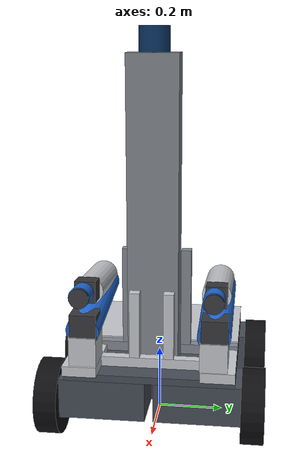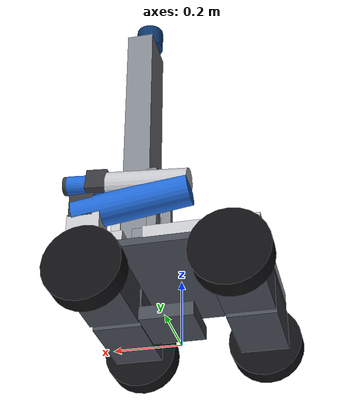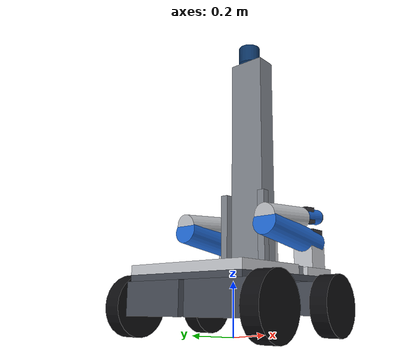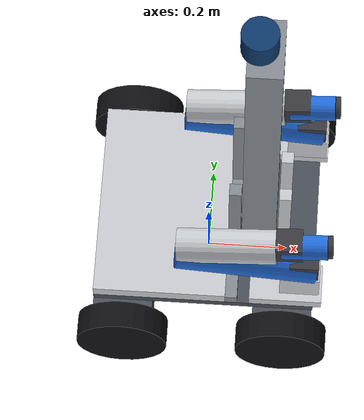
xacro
<?xml version="1.0"?>
<robot name="AG_robot" xmlns:xacro="http://www.ros.org/wiki/xacro">

  <xacro:include filename="$(find ag_robot_description)/urdf/piper_arm_simple.xacro"/>

  <xacro:arg name="lift_travel" default="0.40"/>
  <xacro:arg name="use_gazebo"  default="false"/>
  <xacro:arg name="arm1_prefix" default="arm1_"/>
  <xacro:arg name="arm2_prefix" default="arm2_"/>
  <xacro:arg name="lidar_pitch" default="0"/>
  <xacro:property name="lidar_pitch_deg" value="$(arg lidar_pitch)"/>
  <xacro:property name="lidar_pitch_rad" value="${radians(float(lidar_pitch_deg))}"/>
  <xacro:property name="velodyne_z"
                  value="${0.911 + 0.036*cos(lidar_pitch_rad) + 0.0445*sin(lidar_pitch_rad)}"/>
  <xacro:property name="arm1_prefix" value="$(arg arm1_prefix)"/>
  <xacro:property name="arm2_prefix" value="$(arg arm2_prefix)"/>

  <material name="grey"><color rgba="0.28 0.30 0.34 1.0"/></material>
  <material name="steel"><color rgba="0.52 0.54 0.57 1.0"/></material>
  <material name="black"><color rgba="0.06 0.06 0.07 1.0"/></material>
  <material name="blue"><color rgba="0.20 0.40 0.90 1.0"/></material>
  <material name="red"><color rgba="0.85 0.20 0.20 1.0"/></material>
  <material name="alu"><color rgba="0.78 0.79 0.81 1.0"/></material>
  <material name="dark"><color rgba="0.22 0.22 0.24 1.0"/></material>
  <material name="velodyne_blue"><color rgba="0.05 0.22 0.42 1.0"/></material>
  <material name="accent"><color rgba="0.13 0.42 0.85 1.0"/></material>

  <!-- ───────── 图元宏: visual 与 collision 共用一份几何 ───────── -->
  <xacro:macro name="ag_box" params="size xyz mat rgba">
    <visual>
      <origin xyz="${xyz}" rpy="0 0 0"/>
      <geometry><box size="${size}"/></geometry>
      <material name="${mat}"><color rgba="${rgba}"/></material>
    </visual>
    <collision>
      <origin xyz="${xyz}" rpy="0 0 0"/>
      <geometry><box size="${size}"/></geometry>
    </collision>
  </xacro:macro>

  <!-- 图元宏: visual 与 collision 共用一份几何。
       参数名用 lng 而不是 len —— xacro 内部要用 Python 的 len(), 用 len 当参数名会
       每次实例化都打印 "warning: redefining global symbol: len" (不影响结果, 但很吵)。 -->
  <xacro:macro name="ag_cyl" params="rad lng xyz rpy mat rgba">
    <visual>
      <origin xyz="${xyz}" rpy="${rpy}"/>
      <geometry><cylinder radius="${rad}" length="${lng}"/></geometry>
      <material name="${mat}"><color rgba="${rgba}"/></material>
    </visual>
    <collision>
      <origin xyz="${xyz}" rpy="${rpy}"/>
      <geometry><cylinder radius="${rad}" length="${lng}"/></geometry>
    </collision>
  </xacro:macro>

  <!-- ═════════ base_footprint: 地面投影, Nav2 用 ═════════
       轮子最低点在 base_link 里是 z=-218.49, 所以 base_link 抬高 218.49 mm —— 与原来同。 -->
  <link name="base_footprint"/>

  <joint name="base_joint" type="fixed">
    <parent link="base_footprint"/>
    <child link="base_link"/>
    <origin xyz="0 0 0.2184858" rpy="0 0 1.5707963"/>
  </joint>

  <link name="base_link">
    <!-- ① 车架: 顶板 460×550×2 (Z 0..2) + 4 根 2020 型材 (|X| 210..250, Z -20..0)
           + 4 根 2040 横梁 (Z -20..0) 的并集 -->
    <xacro:ag_box size="0.500 0.550 0.022" xyz="0 0 -0.009"
                  mat="grey" rgba="0.28 0.30 0.34 1.0"/>
    <!-- ② 四套独立悬挂/轮毂总成: 原 4 个连通件, 各 261.5 × 148.0 × 120.0 mm
           前轴 Y -272.983..-125.0 (中心 -198.99), 后轴 Y 127.017..275.0 (中心 201.01)
           注意外沿 |X|=273.5 < 轮子内侧面 253.5+... : 轮毂正好伸进轮子里, 与原来一致 -->
    <xacro:ag_box size="0.2615 0.1479832 0.120" xyz="-0.14275 -0.1989916 -0.0799916"
                  mat="grey" rgba="0.28 0.30 0.34 1.0"/>
    <xacro:ag_box size="0.2615 0.1479832 0.120" xyz=" 0.14275 -0.1989916 -0.0799916"
                  mat="grey" rgba="0.28 0.30 0.34 1.0"/>
    <xacro:ag_box size="0.2615 0.1479832 0.120" xyz="-0.14275  0.2010084 -0.0799916"
                  mat="grey" rgba="0.28 0.30 0.34 1.0"/>
    <xacro:ag_box size="0.2615 0.1479832 0.120" xyz=" 0.14275  0.2010084 -0.0799916"
                  mat="grey" rgba="0.28 0.30 0.34 1.0"/>
    <!-- ③ 底盘下方中央的电池/电控总成: 原连通件 177.0 × 164.29 × 42.4 mm
           (原文件里那 205,888 面的"细节王"件就在这一块里, 简化后整块略过) -->
    <xacro:ag_box size="0.177 0.1642868 0.0424" xyz="-0.0595 -0.0408566 -0.1187916"
                  mat="grey" rgba="0.28 0.30 0.34 1.0"/>
    <!-- ④ 固定在底盘上的平置导轨 (原 rail.stl, 500 × 330 × 36.5 mm, 铝色)
           原文件里它是单独的 visual 就是为了保持亮铝色, 这里同样是独立的一块 -->
    <xacro:ag_box size="0.500 0.330 0.0365" xyz="0 0.110 0.01875"
                  mat="alu" rgba="0.78 0.79 0.81 1.0"/>
    <inertial>
      <origin xyz="0.000000 0.000000 -0.052246" rpy="0 0 0"/>
      <mass value="19.352"/>
      <inertia ixx="0.539215" ixy="0" ixz="0" iyy="0.533908" iyz="0" izz="0.970366"/>
    </inertial>
  </link>

  <!-- ═════════ imu_link: IMU 坐标系 (与原来完全一致: 只有坐标, 无几何) ═════════
       IMU 集成在主控(Orin)上、没有独立安装件。X=0, Y=0, Z = base_link 下方 0.0754 m。 -->
  <link name="imu_link">
    <inertial>
      <origin xyz="0 0 0" rpy="0 0 0"/>
      <mass value="0.02"/>
      <inertia ixx="1e-06" ixy="0" ixz="0" iyy="1e-06" iyz="0" izz="1e-06"/>
    </inertial>
  </link>

  <joint name="imu_joint" type="fixed">
    <parent link="base_link"/>
    <child  link="imu_link"/>
    <origin xyz="0 0 -0.0754" rpy="0 0 0"/>
  </joint>

  <xacro:macro name="wheel_link" params="i">
    <link name="wheel_${i}">
      <xacro:ag_cyl rad="0.1134942" lng="0.068" xyz="0 0 0" rpy="1.5707963 0 0"
                    mat="black" rgba="0.06 0.06 0.07 1.0"/>
      <inertial>
        <origin xyz="0 0.0072004 0" rpy="0 0 0"/>
        <mass value="5.471"/>
        <inertia ixx="0.026585" ixy="0" ixz="0" iyy="0.046979" iyz="0" izz="0.026585"/>
      </inertial>
    </link>
  </xacro:macro>
  <xacro:wheel_link i="1"/><xacro:wheel_link i="2"/>
  <xacro:wheel_link i="3"/><xacro:wheel_link i="4"/>

  <joint name="wheel_1_joint" type="continuous">
    <parent link="base_link"/>
    <child link="wheel_1"/>
    <origin xyz="-0.3019 0.2010084 -0.1049916" rpy="0 0.2807556 -1.5707963"/>
    <axis xyz="0 -1 0"/>
    <limit effort="50" velocity="20"/>
    <dynamics damping="0.01" friction="0.1"/>
  </joint>

  <joint name="wheel_2_joint" type="continuous">
    <parent link="base_link"/>
    <child link="wheel_2"/>
    <origin xyz="0.3019 0.2010084 -0.1049916" rpy="0 0.2807556 1.5707963"/>
    <axis xyz="0 1 0"/>
    <limit effort="50" velocity="20"/>
    <dynamics damping="0.01" friction="0.1"/>
  </joint>

  <joint name="wheel_3_joint" type="continuous">
    <parent link="base_link"/>
    <child link="wheel_3"/>
    <origin xyz="-0.3019 -0.1989916 -0.1049916" rpy="0 0.2807556 -1.5707963"/>
    <axis xyz="0 -1 0"/>
    <limit effort="50" velocity="20"/>
    <dynamics damping="0.01" friction="0.1"/>
  </joint>

  <joint name="wheel_4_joint" type="continuous">
    <parent link="base_link"/>
    <child link="wheel_4"/>
    <origin xyz="0.3019 -0.1989916 -0.1049916" rpy="0 0.2807556 1.5707963"/>
    <axis xyz="0 1 0"/>
    <limit effort="50" velocity="20"/>
    <dynamics damping="0.01" friction="0.1"/>
  </joint>

  <link name="base_frame_link">
    <!-- ① 立柱本体 + 推杆(合成一块) -->
    <xacro:ag_box size="0.150 0.0856 0.909" xyz="0 -0.1296 0.4565"
                  mat="steel" rgba="0.52 0.54 0.57 1.0"/>
    <!-- ② 后侧底部横导轨 (500 mm) -->
    <xacro:ag_box size="0.500 0.030 0.030" xyz="0 -0.070 0.017"
                  mat="steel" rgba="0.52 0.54 0.57 1.0"/>
    <!-- ③ 后侧两根竖直 3030 型材 (300 mm) -->
    <xacro:ag_box size="0.030 0.030 0.300" xyz="-0.090 -0.070 0.182"
                  mat="steel" rgba="0.52 0.54 0.57 1.0"/>
    <xacro:ag_box size="0.030 0.030 0.300" xyz=" 0.090 -0.070 0.182"
                  mat="steel" rgba="0.52 0.54 0.57 1.0"/>
    <inertial>
      <origin xyz="0.000000 -0.114898 0.455004" rpy="0 0 0"/>
      <mass value="25.293"/>
      <inertia ixx="1.783345" ixy="0" ixz="0" iyy="2.280038" iyz="0" izz="0.557192"/>
    </inertial>
  </link>

  <joint name="base_frame_joint" type="fixed">
    <parent link="base_link"/>
    <child link="base_frame_link"/>
    <origin xyz="0 0 0" rpy="0 0 0"/>
  </joint>

  <joint name="lift_joint" type="prismatic">
    <parent link="base_frame_link"/>
    <child link="lift_platform_link"/>
    <origin xyz="0 0 0" rpy="0 0 0"/>
    <axis xyz="0 0 1"/>
    <limit lower="0.0" upper="$(arg lift_travel)" effort="2000" velocity="0.15"/>
    <dynamics damping="50.0" friction="20.0"/>
  </joint>

  <link name="lift_platform_link">
    <!-- ① 机械臂托板 (左 X -250..-150 / 右 X 150..250, 顶面 Z=32) -->
    <xacro:ag_box size="0.100 0.180 0.030" xyz="-0.200 -0.2050963 0.017"
                  mat="alu" rgba="0.78 0.79 0.81 1.0"/>
    <xacro:ag_box size="0.100 0.180 0.030" xyz=" 0.200 -0.2032778 0.017"
                  mat="alu" rgba="0.78 0.79 0.81 1.0"/>
    <!-- ② 前方横向导轨 (300 mm, Z 2..32) -->
    <xacro:ag_box size="0.300 0.030 0.030" xyz="0 -0.1919963 0.017"
                  mat="alu" rgba="0.78 0.79 0.81 1.0"/>
    <!-- ③ 前方两根竖直 3030 型材 (200 mm, Z 32..232) -->
    <xacro:ag_box size="0.030 0.030 0.200" xyz="-0.0505 -0.1919963 0.132"
                  mat="alu" rgba="0.78 0.79 0.81 1.0"/>
    <xacro:ag_box size="0.030 0.030 0.200" xyz=" 0.0505 -0.1919963 0.132"
                  mat="alu" rgba="0.78 0.79 0.81 1.0"/>
    <inertial>
      <origin xyz="0.000000 -0.202447 0.117000" rpy="0 0 0"/>
      <mass value="3.602"/>
      <inertia ixx="0.026183" ixy="0" ixz="0" iyy="0.090914" iyz="0" izz="0.085342"/>
    </inertial>
  </link>

  <link name="velodyne_link">
    <visual>
      <geometry><cylinder radius="0.0445" length="0.072"/></geometry>
      <material name="velodyne_blue"/>
    </visual>
    <collision>
      <geometry><cylinder radius="0.0445" length="0.072"/></geometry>
    </collision>
    <inertial>
      <origin xyz="0 0 0" rpy="0 0 0"/>
      <mass value="0.59"/>
      <inertia ixx="0.000547" ixy="0" ixz="0"
               iyy="0.000547" iyz="0" izz="0.000584"/>
    </inertial>
  </link>

  <joint name="velodyne_joint" type="fixed">
    <parent link="base_frame_link"/>
    <child link="velodyne_link"/>
    <!-- 位姿由 lidar_pitch 参数驱动, 与 AG_robot.urdf.xacro 里的公式逐字相同 -->
    <origin xyz="0 -0.114898 ${velodyne_z}" rpy="${lidar_pitch_rad} 0 0"/>
  </joint>

  <xacro:piper_arm_simple prefix="${arm1_prefix}" parent="lift_platform_link">
    <origin xyz="0.187732 -0.249047 0.032000" rpy="0 0 -1.5707963"/>
  </xacro:piper_arm_simple>
  <xacro:piper_arm_simple prefix="${arm2_prefix}" parent="lift_platform_link">
    <origin xyz="-0.190000 -0.247667 0.032000" rpy="0 0 -1.5707963"/>
  </xacro:piper_arm_simple>

  <!-- 轮子摩擦系数 (与 AG_robot.urdf.xacro 相同; gazebo.xacro 里另有一份同样的定义,
       两份都会被 sdformat 合并, 值一致所以无冲突 —— 保持与原文件相同的写法) -->
  <xacro:macro name="wheel_gz" params="i">
    <gazebo reference="wheel_${i}">
      <mu1>1.2</mu1><mu2>1.2</mu2>
    </gazebo>
  </xacro:macro>
  <xacro:wheel_gz i="1"/><xacro:wheel_gz i="2"/>
  <xacro:wheel_gz i="3"/><xacro:wheel_gz i="4"/>

  <xacro:if value="$(arg use_gazebo)">
    <xacro:include filename="$(find ag_robot_description)/urdf/gazebo.xacro"/>
  </xacro:if>

</robot>

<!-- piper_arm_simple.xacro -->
<robot xmlns:xacro="http://www.ros.org/wiki/xacro">

  <xacro:macro name="piper_arm_simple" params="prefix parent *origin">

    <!-- ───────── base_link (臂座) ─────────
         官方网格包围盒: 98.5 × 80.0 × 86.0 mm, 中心 (-9.25, 0, 43) mm
         原来是一块带圆角的底座 + 中间圆柱凸台; 简化成长方体, 外形尺寸不变 -->
    <link name="${prefix}base_link">
      <inertial>
        <origin xyz="-0.00473641164191482 2.56829134630247E-05 0.041451518036016" rpy="0 0 0"/>
        <mass value="1.02"/>
        <inertia ixx="0.00267433" ixy="-0.00000073" ixz="-0.00017389" iyy="0.00282612" iyz="0.0000004" izz="0.00089624"/>
      </inertial>
      <xacro:ag_box size="0.0985 0.08 0.086" xyz="-0.00925 0 0.043"
                   mat="alu" rgba="0.78 0.79 0.81 1.0"/>
    </link>
    <!-- ───────── link1 (J1 转台) ─────────
         官方网格包围盒: 71.86 × 77.5 × 73.0 mm, 中心 (0.055, 2, -6.5) mm -->
    <link name="${prefix}link1">
      <inertial>
        <origin xyz="0.00032 -0.00041 -0.00348" rpy="0 0 0"/>
        <mass value="0.71"/>
        <inertia ixx="0.00050027" ixy="0.00000078" ixz="0.00000626" iyy="0.00040879" iyz="0.00000462" izz="0.00045802"/>
      </inertial>
      <xacro:ag_box size="0.071863 0.0775 0.073" xyz="0.0000545 0.002 -0.0065"
                   mat="dark" rgba="0.22 0.22 0.24 1.0"/>
    </link>
    <!-- ───────── link2 (大臂, 长杆沿 +X) ─────────
         官方网格包围盒: 347.97 (X) × 96.53 (Y) × 97.0 (Z) mm, 中心 (142.522, -16.548, 0) mm
         原来是一根圆角方管(截面 96.5×97) + 末端关节壳; 简化成沿 X 的圆柱, 半径取截面的一半 -->
    <link name="${prefix}link2">
      <inertial>
        <origin xyz="0.21852 -0.00861 0.00126" rpy="0 0 0"/>
        <mass value="1.16"/>
        <inertia ixx="0.00111915" ixy="0.00182916" ixz="0.00019233" iyy="0.06763251" iyz="0.00000767" izz="0.067559"/>
      </inertial>
      <xacro:ag_cyl rad="0.0485" lng="0.347971" xyz="0.1425225 -0.016548 0" rpy="0 1.5707963 0"
                    mat="accent" rgba="0.13 0.42 0.85 1.0"/>
    </link>
    <!-- ───────── link3 (小臂, 长杆沿 -Y) ─────────
         官方网格包围盒: 86.05 (X) × 244.72 (Y) × 80.75 (Z) mm, 中心 (-13.109, -92.391, 0.375) mm -->
    <link name="${prefix}link3">
      <inertial>
        <origin xyz="-0.01999 -0.14808 -0.00053" rpy="0 0 0"/>
        <mass value="0.5"/>
        <inertia ixx="0.01347608" ixy="0.00161034" ixz="0.00000066" iyy="0.00046377" iyz="0.00000162" izz="0.01363321"/>
      </inertial>
      <xacro:ag_cyl rad="0.0430255" lng="0.244722" xyz="-0.0131085 -0.092391 0.000375" rpy="-1.5707963 0 0"
                    mat="alu" rgba="0.78 0.79 0.81 1.0"/>
    </link>
    <!-- ───────── link4 (腕部转座) ─────────
         官方网格包围盒: 62.71 × 61.08 × 64.45 mm, 中心 (-1.513, 2.043, -3.776) mm -->
    <link name="${prefix}link4">
      <inertial>
        <origin xyz="0.00013 -0.00076 -0.00394" rpy="0 0 0"/>
        <mass value="0.38"/>
        <inertia ixx="0.00017844" ixy="0.00000062" ixz="0.00000067" iyy="0.00018914" iyz="0.00000408" izz="0.00014613"/>
      </inertial>
      <xacro:ag_box size="0.062711 0.06108 0.064448" xyz="-0.0015125 0.002043 -0.003776"
                   mat="dark" rgba="0.22 0.22 0.24 1.0"/>
    </link>
    <!-- ───────── link5 (腕部, 短杆沿 -Y) ─────────
         官方网格包围盒: 59.96 (X) × 113.48 (Y) × 60.92 (Z) mm, 中心 (0, -33.261, -1.958) mm -->
    <link name="${prefix}link5">
      <inertial>
        <origin xyz="0.00018 -0.06104 -0.00227" rpy="0 0 0"/>
        <mass value="0.383"/>
        <inertia ixx="0.00172318" ixy="0.00000259" ixz="0.00000010" iyy="0.00017936" iyz="0.00000990" izz="0.00171172"/>
      </inertial>
      <xacro:ag_cyl rad="0.03049" lng="0.113479" xyz="0 -0.0332605 -0.001958" rpy="-1.5707963 0 0"
                    mat="accent" rgba="0.13 0.42 0.85 1.0"/>
    </link>
    <!-- ───────── link6 (末端法兰盘) ─────────
         官方网格包围盒: 34.94 × 34.97 × 4.0 mm (薄圆盘), 中心 (-0.06, 0.009, -2) mm -->
    <link name="${prefix}link6">
      <inertial>
        <origin xyz="-0.00003 0.00006 -0.002" rpy="0 0 0"/>
        <mass value="0.007"/>
        <inertia ixx="0.00152112" ixy="0.00000202" ixz="0.00000261" iyy="0.00138626" iyz="0.00000002" izz="0.00031152"/>
      </inertial>
      <xacro:ag_cyl rad="0.01749" lng="0.004" xyz="-0.00006 0.000009 -0.002" rpy="0 0 0"
                    mat="dark" rgba="0.22 0.22 0.24 1.0"/>
    </link>
    <!-- 安装: 由调用者给出 origin (base_link 的原点在 J1 轴线上, +Z 就是 J1 轴) -->
    <joint name="${prefix}mount_joint" type="fixed">
      <parent link="${parent}"/>
      <child link="${prefix}base_link"/>
      <xacro:insert_block name="origin"/>
    </joint>

    <joint name="${prefix}joint1" type="revolute">
      <parent link="${prefix}base_link"/>
      <child link="${prefix}link1"/>
      <origin xyz="0 0 0.123" rpy="0 0 0"/>
      <axis xyz="0 0 1"/>
      <limit lower="-2.6179938" upper="2.6179938" effort="100" velocity="5"/>
      <dynamics damping="0.3" friction="0.1"/>
    </joint>
    <joint name="${prefix}joint2" type="revolute">
      <parent link="${prefix}link1"/>
      <child link="${prefix}link2"/>
      <origin xyz="0 0 0" rpy="1.5707963 -0.1357866 -3.1415926"/>
      <axis xyz="0 0 1"/>
      <limit lower="0" upper="3.1415926" effort="100" velocity="5"/>
      <dynamics damping="0.3" friction="0.1"/>
    </joint>
    <joint name="${prefix}joint3" type="revolute">
      <parent link="${prefix}link2"/>
      <child link="${prefix}link3"/>
      <origin xyz="0.28503 0 0" rpy="0 0 -1.7938494"/>
      <axis xyz="0 0 1"/>
      <limit lower="-2.9670597" upper="0" effort="100" velocity="5"/>
      <dynamics damping="0.3" friction="0.1"/>
    </joint>
    <joint name="${prefix}joint4" type="revolute">
      <parent link="${prefix}link3"/>
      <child link="${prefix}link4"/>
      <origin xyz="-0.02198 -0.25075 0" rpy="1.5707963 0 0"/>
      <axis xyz="0 0 1"/>
      <limit lower="-1.7453292" upper="1.7453292" effort="100" velocity="5"/>
      <dynamics damping="0.3" friction="0.1"/>
    </joint>
    <joint name="${prefix}joint5" type="revolute">
      <parent link="${prefix}link4"/>
      <child link="${prefix}link5"/>
      <origin xyz="0 0 0" rpy="-1.5707963 0 0"/>
      <axis xyz="0 0 1"/>
      <limit lower="-1.2217304" upper="1.2217304" effort="100" velocity="5"/>
      <dynamics damping="0.3" friction="0.1"/>
    </joint>
    <joint name="${prefix}joint6" type="revolute">
      <parent link="${prefix}link5"/>
      <child link="${prefix}link6"/>
      <origin xyz="8.8259E-05 -0.091 0" rpy="1.5707963 0 0"/>
      <axis xyz="0 0 1"/>
      <limit lower="-2.0943951" upper="2.0943951" effort="100" velocity="5"/>
      <dynamics damping="0.3" friction="0.1"/>
    </joint>
    <!-- ───────── flange_link (官方 piper_with_gripper_description.xacro 里的定义) ─────────
         官方网格包围盒: 56.99 × 56.98 × 10.5 mm 的圆盘, 中心 (-0.005, 0, 5.25) mm -->
    <link name="${prefix}flange_link">
      <inertial>
        <origin xyz="1.151691e-03 0.782428e-03 4.798051e-03" rpy="0 0 0"/>
        <mass value="0.04"/>
        <inertia ixx="9.935389e-06" ixy="0.0" ixz="0.0"
                 iyy="10.508003e-06" iyz="0.0" izz="19.652873e-06"/>
      </inertial>
      <xacro:ag_cyl rad="0.028491" lng="0.0105" xyz="-0.000005 0 0.00525" rpy="0 0 0"
                    mat="dark" rgba="0.22 0.22 0.24 1.0"/>
    </link>

    <joint name="${prefix}flange_joint" type="fixed">
      <parent link="${prefix}link6"/>
      <child link="${prefix}flange_link"/>
      <origin xyz="0 0 0" rpy="0 0 0"/>
    </joint>

    <!-- 末端安装坐标系: 法兰外端面, 以后接夹爪/手爪用这个 frame -->
    <link name="${prefix}tool0"/>
    <joint name="${prefix}link6_to_tool0" type="fixed">
      <parent link="${prefix}flange_link"/>
      <child link="${prefix}tool0"/>
      <origin xyz="0 0 0.0105" rpy="0 0 0"/>
    </joint>

  </xacro:macro>
</robot>
